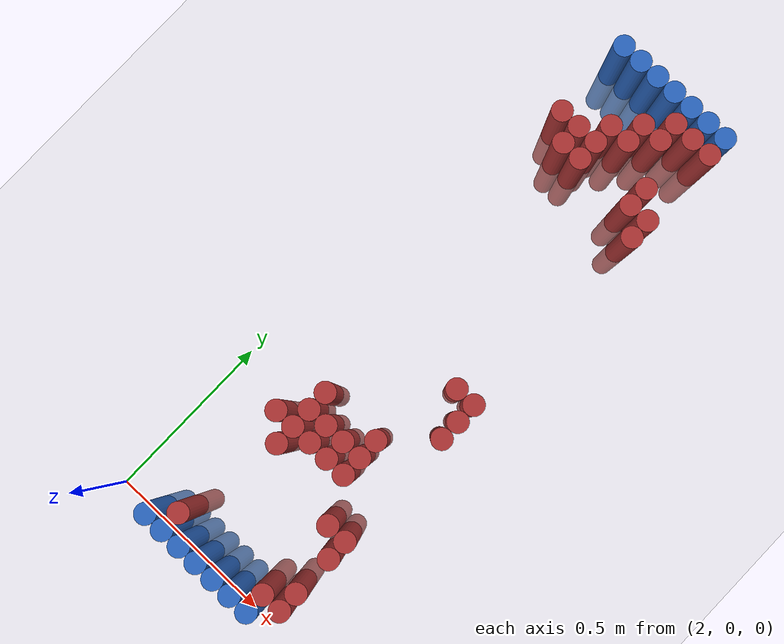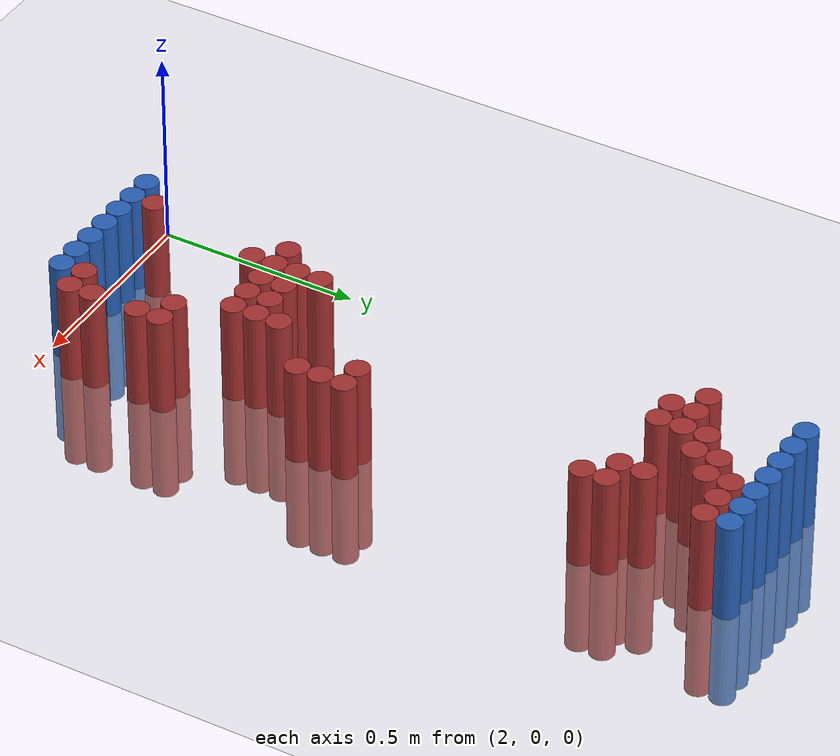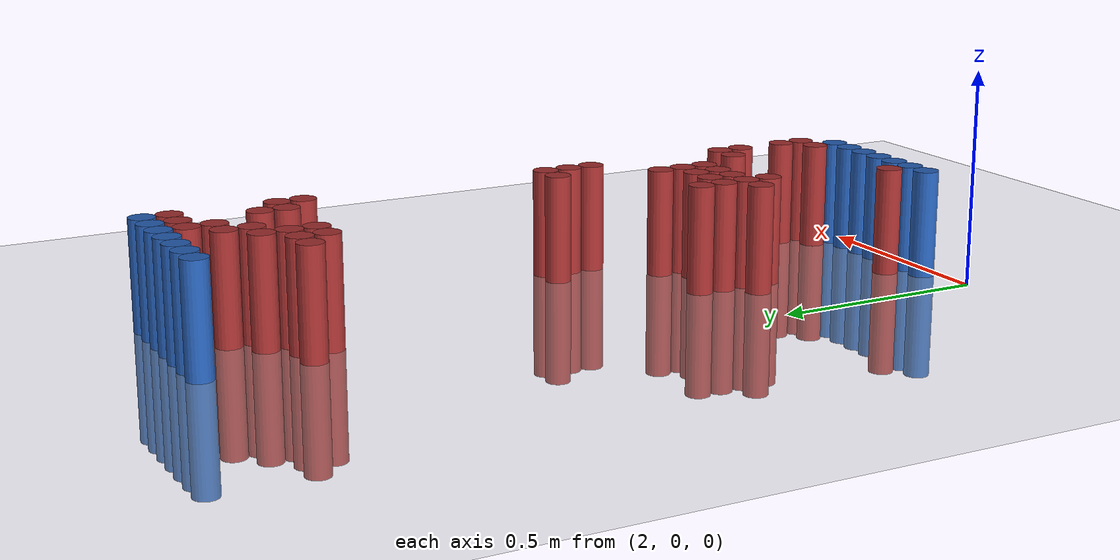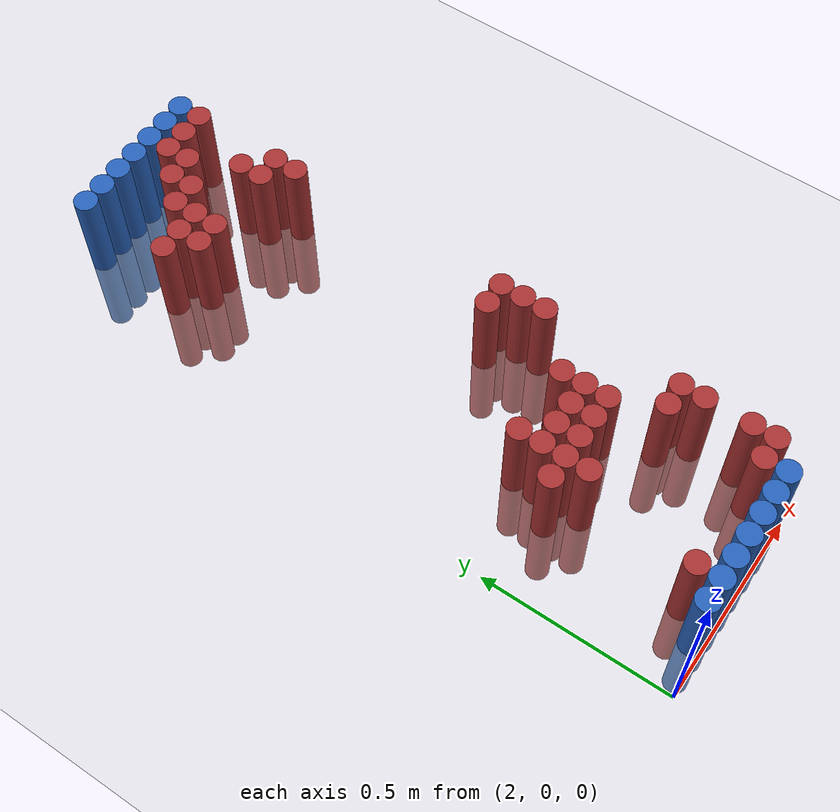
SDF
<sdf version="1.6">
 <world name="default">
  <model name="ground_plane">
   <static>1</static>
   <link name="link">
    <collision name="collision">
     <geometry><plane><normal>0 0 1</normal><size>100 100</size></plane></geometry>
     <surface><friction><ode><mu>100</mu><mu2>50</mu2></ode></friction></surface>
    </collision>
    <visual name="visual">
     <cast_shadows>0</cast_shadows>
     <geometry><plane><normal>0 0 1</normal><size>100 100</size></plane></geometry>
     <material>
      <script><uri>file://media/materials/scripts/gazebo.material</uri><name>Gazebo/Grey</name></script>
     </material>
    </visual>
   </link>
  </model>
  <model name="unit_cylinder_97">
   <static>1</static>
   <pose>2.190000 1.770000 0.000000 0.000000 0.000000 0.000000</pose>
   <link name="link">
    <inertial>
     <mass>1</mass>
     <inertia><ixx>0.145833</ixx><ixy>0</ixy><ixz>0</ixz><iyy>0.145833</iyy><iyz>0</iyz><izz>0.125</izz></inertia>
    </inertial>
    <collision name="collision">
     <geometry><cylinder><radius>0.030000</radius><length>0.5</length></cylinder></geometry>
    </collision>
    <visual name="visual">
     <geometry><cylinder><radius>0.030000</radius><length>0.5</length></cylinder></geometry>
     <material>
      <ambient>0.152000 0.379000 0.720000 1</ambient>
      <diffuse>0.152000 0.379000 0.720000 1</diffuse>
     </material>
     <material>
      <script><name>Gazebo/Grey</name><uri>file://media/materials/scripts/gazebo.material</uri></script>
     </material>
    </visual>
   </link>
  </model>
  <model name="unit_cylinder_98">
   <static>1</static>
   <pose>2.250000 1.770000 0.000000 0.000000 0.000000 0.000000</pose>
   <link name="link">
    <inertial>
     <mass>1</mass>
     <inertia><ixx>0.145833</ixx><ixy>0</ixy><ixz>0</ixz><iyy>0.145833</iyy><iyz>0</iyz><izz>0.125</izz></inertia>
    </inertial>
    <collision name="collision">
     <geometry><cylinder><radius>0.030000</radius><length>0.5</length></cylinder></geometry>
    </collision>
    <visual name="visual">
     <geometry><cylinder><radius>0.030000</radius><length>0.5</length></cylinder></geometry>
     <material>
      <ambient>0.152000 0.379000 0.720000 1</ambient>
      <diffuse>0.152000 0.379000 0.720000 1</diffuse>
     </material>
     <material>
      <script><name>Gazebo/Grey</name><uri>file://media/materials/scripts/gazebo.material</uri></script>
     </material>
    </visual>
   </link>
  </model>
  <model name="unit_cylinder_99">
   <static>1</static>
   <pose>2.310000 1.770000 0.000000 0.000000 0.000000 0.000000</pose>
   <link name="link">
    <inertial>
     <mass>1</mass>
     <inertia><ixx>0.145833</ixx><ixy>0</ixy><ixz>0</ixz><iyy>0.145833</iyy><iyz>0</iyz><izz>0.125</izz></inertia>
    </inertial>
    <collision name="collision">
     <geometry><cylinder><radius>0.030000</radius><length>0.5</length></cylinder></geometry>
    </collision>
    <visual name="visual">
     <geometry><cylinder><radius>0.030000</radius><length>0.5</length></cylinder></geometry>
     <material>
      <ambient>0.152000 0.379000 0.720000 1</ambient>
      <diffuse>0.152000 0.379000 0.720000 1</diffuse>
     </material>
     <material>
      <script><name>Gazebo/Grey</name><uri>file://media/materials/scripts/gazebo.material</uri></script>
     </material>
    </visual>
   </link>
  </model>
  <model name="unit_cylinder_100">
   <static>1</static>
   <pose>2.370000 1.770000 0.000000 0.000000 0.000000 0.000000</pose>
   <link name="link">
    <inertial>
     <mass>1</mass>
     <inertia><ixx>0.145833</ixx><ixy>0</ixy><ixz>0</ixz><iyy>0.145833</iyy><iyz>0</iyz><izz>0.125</izz></inertia>
    </inertial>
    <collision name="collision">
     <geometry><cylinder><radius>0.030000</radius><length>0.5</length></cylinder></geometry>
    </collision>
    <visual name="visual">
     <geometry><cylinder><radius>0.030000</radius><length>0.5</length></cylinder></geometry>
     <material>
      <ambient>0.152000 0.379000 0.720000 1</ambient>
      <diffuse>0.152000 0.379000 0.720000 1</diffuse>
     </material>
     <material>
      <script><name>Gazebo/Grey</name><uri>file://media/materials/scripts/gazebo.material</uri></script>
     </material>
    </visual>
   </link>
  </model>
  <model name="unit_cylinder_101">
   <static>1</static>
   <pose>2.430000 1.770000 0.000000 0.000000 0.000000 0.000000</pose>
   <link name="link">
    <inertial>
     <mass>1</mass>
     <inertia><ixx>0.145833</ixx><ixy>0</ixy><ixz>0</ixz><iyy>0.145833</iyy><iyz>0</iyz><izz>0.125</izz></inertia>
    </inertial>
    <collision name="collision">
     <geometry><cylinder><radius>0.030000</radius><length>0.5</length></cylinder></geometry>
    </collision>
    <visual name="visual">
     <geometry><cylinder><radius>0.030000</radius><length>0.5</length></cylinder></geometry>
     <material>
      <ambient>0.152000 0.379000 0.720000 1</ambient>
      <diffuse>0.152000 0.379000 0.720000 1</diffuse>
     </material>
     <material>
      <script><name>Gazebo/Grey</name><uri>file://media/materials/scripts/gazebo.material</uri></script>
     </material>
    </visual>
   </link>
  </model>
  <model name="unit_cylinder_102">
   <static>1</static>
   <pose>2.490000 1.770000 0.000000 0.000000 0.000000 0.000000</pose>
   <link name="link">
    <inertial>
     <mass>1</mass>
     <inertia><ixx>0.145833</ixx><ixy>0</ixy><ixz>0</ixz><iyy>0.145833</iyy><iyz>0</iyz><izz>0.125</izz></inertia>
    </inertial>
    <collision name="collision">
     <geometry><cylinder><radius>0.030000</radius><length>0.5</length></cylinder></geometry>
    </collision>
    <visual name="visual">
     <geometry><cylinder><radius>0.030000</radius><length>0.5</length></cylinder></geometry>
     <material>
      <ambient>0.152000 0.379000 0.720000 1</ambient>
      <diffuse>0.152000 0.379000 0.720000 1</diffuse>
     </material>
     <material>
      <script><name>Gazebo/Grey</name><uri>file://media/materials/scripts/gazebo.material</uri></script>
     </material>
    </visual>
   </link>
  </model>
  <model name="unit_cylinder_103">
   <static>1</static>
   <pose>2.550000 1.770000 0.000000 0.000000 0.000000 0.000000</pose>
   <link name="link">
    <inertial>
     <mass>1</mass>
     <inertia><ixx>0.145833</ixx><ixy>0</ixy><ixz>0</ixz><iyy>0.145833</iyy><iyz>0</iyz><izz>0.125</izz></inertia>
    </inertial>
    <collision name="collision">
     <geometry><cylinder><radius>0.030000</radius><length>0.5</length></cylinder></geometry>
    </collision>
    <visual name="visual">
     <geometry><cylinder><radius>0.030000</radius><length>0.5</length></cylinder></geometry>
     <material>
      <ambient>0.152000 0.379000 0.720000 1</ambient>
      <diffuse>0.152000 0.379000 0.720000 1</diffuse>
     </material>
     <material>
      <script><name>Gazebo/Grey</name><uri>file://media/materials/scripts/gazebo.material</uri></script>
     </material>
    </visual>
   </link>
  </model>
  <model name="unit_cylinder_126">
   <static>1</static>
   <pose>2.430000 1.710000 0.000000 0.000000 0.000000 0.000000</pose>
   <link name="link">
    <inertial>
     <mass>1</mass>
     <inertia><ixx>0.145833</ixx><ixy>0</ixy><ixz>0</ixz><iyy>0.145833</iyy><iyz>0</iyz><izz>0.125</izz></inertia>
    </inertial>
    <collision name="collision">
     <geometry><cylinder><radius>0.030000</radius><length>0.5</length></cylinder></geometry>
    </collision>
    <visual name="visual">
     <geometry><cylinder><radius>0.030000</radius><length>0.5</length></cylinder></geometry>
     <material>
      <ambient>0.648000 0.192000 0.192000 1</ambient>
      <diffuse>0.648000 0.192000 0.192000 1</diffuse>
     </material>
     <material>
      <script><name>Gazebo/Grey</name><uri>file://media/materials/scripts/gazebo.material</uri></script>
     </material>
    </visual>
   </link>
  </model>
  <model name="unit_cylinder_127">
   <static>1</static>
   <pose>2.490000 1.710000 0.000000 0.000000 0.000000 0.000000</pose>
   <link name="link">
    <inertial>
     <mass>1</mass>
     <inertia><ixx>0.145833</ixx><ixy>0</ixy><ixz>0</ixz><iyy>0.145833</iyy><iyz>0</iyz><izz>0.125</izz></inertia>
    </inertial>
    <collision name="collision">
     <geometry><cylinder><radius>0.030000</radius><length>0.5</length></cylinder></geometry>
    </collision>
    <visual name="visual">
     <geometry><cylinder><radius>0.030000</radius><length>0.5</length></cylinder></geometry>
     <material>
      <ambient>0.648000 0.192000 0.192000 1</ambient>
      <diffuse>0.648000 0.192000 0.192000 1</diffuse>
     </material>
     <material>
      <script><name>Gazebo/Grey</name><uri>file://media/materials/scripts/gazebo.material</uri></script>
     </material>
    </visual>
   </link>
  </model>
  <model name="unit_cylinder_128">
   <static>1</static>
   <pose>2.550000 1.710000 0.000000 0.000000 0.000000 0.000000</pose>
   <link name="link">
    <inertial>
     <mass>1</mass>
     <inertia><ixx>0.145833</ixx><ixy>0</ixy><ixz>0</ixz><iyy>0.145833</iyy><iyz>0</iyz><izz>0.125</izz></inertia>
    </inertial>
    <collision name="collision">
     <geometry><cylinder><radius>0.030000</radius><length>0.5</length></cylinder></geometry>
    </collision>
    <visual name="visual">
     <geometry><cylinder><radius>0.030000</radius><length>0.5</length></cylinder></geometry>
     <material>
      <ambient>0.648000 0.192000 0.192000 1</ambient>
      <diffuse>0.648000 0.192000 0.192000 1</diffuse>
     </material>
     <material>
      <script><name>Gazebo/Grey</name><uri>file://media/materials/scripts/gazebo.material</uri></script>
     </material>
    </visual>
   </link>
  </model>
  <model name="unit_cylinder_142">
   <static>1</static>
   <pose>2.370000 1.650000 0.000000 0.000000 0.000000 0.000000</pose>
   <link name="link">
    <inertial>
     <mass>1</mass>
     <inertia><ixx>0.145833</ixx><ixy>0</ixy><ixz>0</ixz><iyy>0.145833</iyy><iyz>0</iyz><izz>0.125</izz></inertia>
    </inertial>
    <collision name="collision">
     <geometry><cylinder><radius>0.030000</radius><length>0.5</length></cylinder></geometry>
    </collision>
    <visual name="visual">
     <geometry><cylinder><radius>0.030000</radius><length>0.5</length></cylinder></geometry>
     <material>
      <ambient>0.648000 0.192000 0.192000 1</ambient>
      <diffuse>0.648000 0.192000 0.192000 1</diffuse>
     </material>
     <material>
      <script><name>Gazebo/Grey</name><uri>file://media/materials/scripts/gazebo.material</uri></script>
     </material>
    </visual>
   </link>
  </model>
  <model name="unit_cylinder_143">
   <static>1</static>
   <pose>2.430000 1.650000 0.000000 0.000000 0.000000 0.000000</pose>
   <link name="link">
    <inertial>
     <mass>1</mass>
     <inertia><ixx>0.145833</ixx><ixy>0</ixy><ixz>0</ixz><iyy>0.145833</iyy><iyz>0</iyz><izz>0.125</izz></inertia>
    </inertial>
    <collision name="collision">
     <geometry><cylinder><radius>0.030000</radius><length>0.5</length></cylinder></geometry>
    </collision>
    <visual name="visual">
     <geometry><cylinder><radius>0.030000</radius><length>0.5</length></cylinder></geometry>
     <material>
      <ambient>0.648000 0.192000 0.192000 1</ambient>
      <diffuse>0.648000 0.192000 0.192000 1</diffuse>
     </material>
     <material>
      <script><name>Gazebo/Grey</name><uri>file://media/materials/scripts/gazebo.material</uri></script>
     </material>
    </visual>
   </link>
  </model>
  <model name="unit_cylinder_151">
   <static>1</static>
   <pose>2.310000 1.590000 0.000000 0.000000 0.000000 0.000000</pose>
   <link name="link">
    <inertial>
     <mass>1</mass>
     <inertia><ixx>0.145833</ixx><ixy>0</ixy><ixz>0</ixz><iyy>0.145833</iyy><iyz>0</iyz><izz>0.125</izz></inertia>
    </inertial>
    <collision name="collision">
     <geometry><cylinder><radius>0.030000</radius><length>0.5</length></cylinder></geometry>
    </collision>
    <visual name="visual">
     <geometry><cylinder><radius>0.030000</radius><length>0.5</length></cylinder></geometry>
     <material>
      <ambient>0.648000 0.192000 0.192000 1</ambient>
      <diffuse>0.648000 0.192000 0.192000 1</diffuse>
     </material>
     <material>
      <script><name>Gazebo/Grey</name><uri>file://media/materials/scripts/gazebo.material</uri></script>
     </material>
    </visual>
   </link>
  </model>
  <model name="unit_cylinder_152">
   <static>1</static>
   <pose>2.370000 1.590000 0.000000 0.000000 0.000000 0.000000</pose>
   <link name="link">
    <inertial>
     <mass>1</mass>
     <inertia><ixx>0.145833</ixx><ixy>0</ixy><ixz>0</ixz><iyy>0.145833</iyy><iyz>0</iyz><izz>0.125</izz></inertia>
    </inertial>
    <collision name="collision">
     <geometry><cylinder><radius>0.030000</radius><length>0.5</length></cylinder></geometry>
    </collision>
    <visual name="visual">
     <geometry><cylinder><radius>0.030000</radius><length>0.5</length></cylinder></geometry>
     <material>
      <ambient>0.648000 0.192000 0.192000 1</ambient>
      <diffuse>0.648000 0.192000 0.192000 1</diffuse>
     </material>
     <material>
      <script><name>Gazebo/Grey</name><uri>file://media/materials/scripts/gazebo.material</uri></script>
     </material>
    </visual>
   </link>
  </model>
  <model name="unit_cylinder_157">
   <static>1</static>
   <pose>2.190000 1.530000 0.000000 0.000000 0.000000 0.000000</pose>
   <link name="link">
    <inertial>
     <mass>1</mass>
     <inertia><ixx>0.145833</ixx><ixy>0</ixy><ixz>0</ixz><iyy>0.145833</iyy><iyz>0</iyz><izz>0.125</izz></inertia>
    </inertial>
    <collision name="collision">
     <geometry><cylinder><radius>0.030000</radius><length>0.5</length></cylinder></geometry>
    </collision>
    <visual name="visual">
     <geometry><cylinder><radius>0.030000</radius><length>0.5</length></cylinder></geometry>
     <material>
      <ambient>0.648000 0.192000 0.192000 1</ambient>
      <diffuse>0.648000 0.192000 0.192000 1</diffuse>
     </material>
     <material>
      <script><name>Gazebo/Grey</name><uri>file://media/materials/scripts/gazebo.material</uri></script>
     </material>
    </visual>
   </link>
  </model>
  <model name="unit_cylinder_158">
   <static>1</static>
   <pose>2.250000 1.530000 0.000000 0.000000 0.000000 0.000000</pose>
   <link name="link">
    <inertial>
     <mass>1</mass>
     <inertia><ixx>0.145833</ixx><ixy>0</ixy><ixz>0</ixz><iyy>0.145833</iyy><iyz>0</iyz><izz>0.125</izz></inertia>
    </inertial>
    <collision name="collision">
     <geometry><cylinder><radius>0.030000</radius><length>0.5</length></cylinder></geometry>
    </collision>
    <visual name="visual">
     <geometry><cylinder><radius>0.030000</radius><length>0.5</length></cylinder></geometry>
     <material>
      <ambient>0.648000 0.192000 0.192000 1</ambient>
      <diffuse>0.648000 0.192000 0.192000 1</diffuse>
     </material>
     <material>
      <script><name>Gazebo/Grey</name><uri>file://media/materials/scripts/gazebo.material</uri></script>
     </material>
    </visual>
   </link>
  </model>
  <model name="unit_cylinder_159">
   <static>1</static>
   <pose>2.310000 1.530000 0.000000 0.000000 0.000000 0.000000</pose>
   <link name="link">
    <inertial>
     <mass>1</mass>
     <inertia><ixx>0.145833</ixx><ixy>0</ixy><ixz>0</ixz><iyy>0.145833</iyy><iyz>0</iyz><izz>0.125</izz></inertia>
    </inertial>
    <collision name="collision">
     <geometry><cylinder><radius>0.030000</radius><length>0.5</length></cylinder></geometry>
    </collision>
    <visual name="visual">
     <geometry><cylinder><radius>0.030000</radius><length>0.5</length></cylinder></geometry>
     <material>
      <ambient>0.648000 0.192000 0.192000 1</ambient>
      <diffuse>0.648000 0.192000 0.192000 1</diffuse>
     </material>
     <material>
      <script><name>Gazebo/Grey</name><uri>file://media/materials/scripts/gazebo.material</uri></script>
     </material>
    </visual>
   </link>
  </model>
  <model name="unit_cylinder_160">
   <static>1</static>
   <pose>2.490000 1.530000 0.000000 0.000000 0.000000 0.000000</pose>
   <link name="link">
    <inertial>
     <mass>1</mass>
     <inertia><ixx>0.145833</ixx><ixy>0</ixy><ixz>0</ixz><iyy>0.145833</iyy><iyz>0</iyz><izz>0.125</izz></inertia>
    </inertial>
    <collision name="collision">
     <geometry><cylinder><radius>0.030000</radius><length>0.5</length></cylinder></geometry>
    </collision>
    <visual name="visual">
     <geometry><cylinder><radius>0.030000</radius><length>0.5</length></cylinder></geometry>
     <material>
      <ambient>0.648000 0.192000 0.192000 1</ambient>
      <diffuse>0.648000 0.192000 0.192000 1</diffuse>
     </material>
     <material>
      <script><name>Gazebo/Grey</name><uri>file://media/materials/scripts/gazebo.material</uri></script>
     </material>
    </visual>
   </link>
  </model>
  <model name="unit_cylinder_162">
   <static>1</static>
   <pose>2.250000 1.470000 0.000000 0.000000 0.000000 0.000000</pose>
   <link name="link">
    <inertial>
     <mass>1</mass>
     <inertia><ixx>0.145833</ixx><ixy>0</ixy><ixz>0</ixz><iyy>0.145833</iyy><iyz>0</iyz><izz>0.125</izz></inertia>
    </inertial>
    <collision name="collision">
     <geometry><cylinder><radius>0.030000</radius><length>0.5</length></cylinder></geometry>
    </collision>
    <visual name="visual">
     <geometry><cylinder><radius>0.030000</radius><length>0.5</length></cylinder></geometry>
     <material>
      <ambient>0.648000 0.192000 0.192000 1</ambient>
      <diffuse>0.648000 0.192000 0.192000 1</diffuse>
     </material>
     <material>
      <script><name>Gazebo/Grey</name><uri>file://media/materials/scripts/gazebo.material</uri></script>
     </material>
    </visual>
   </link>
  </model>
  <model name="unit_cylinder_163">
   <static>1</static>
   <pose>2.310000 1.470000 0.000000 0.000000 0.000000 0.000000</pose>
   <link name="link">
    <inertial>
     <mass>1</mass>
     <inertia><ixx>0.145833</ixx><ixy>0</ixy><ixz>0</ixz><iyy>0.145833</iyy><iyz>0</iyz><izz>0.125</izz></inertia>
    </inertial>
    <collision name="collision">
     <geometry><cylinder><radius>0.030000</radius><length>0.5</length></cylinder></geometry>
    </collision>
    <visual name="visual">
     <geometry><cylinder><radius>0.030000</radius><length>0.5</length></cylinder></geometry>
     <material>
      <ambient>0.648000 0.192000 0.192000 1</ambient>
      <diffuse>0.648000 0.192000 0.192000 1</diffuse>
     </material>
     <material>
      <script><name>Gazebo/Grey</name><uri>file://media/materials/scripts/gazebo.material</uri></script>
     </material>
    </visual>
   </link>
  </model>
  <model name="unit_cylinder_164">
   <static>1</static>
   <pose>2.490000 1.470000 0.000000 0.000000 0.000000 0.000000</pose>
   <link name="link">
    <inertial>
     <mass>1</mass>
     <inertia><ixx>0.145833</ixx><ixy>0</ixy><ixz>0</ixz><iyy>0.145833</iyy><iyz>0</iyz><izz>0.125</izz></inertia>
    </inertial>
    <collision name="collision">
     <geometry><cylinder><radius>0.030000</radius><length>0.5</length></cylinder></geometry>
    </collision>
    <visual name="visual">
     <geometry><cylinder><radius>0.030000</radius><length>0.5</length></cylinder></geometry>
     <material>
      <ambient>0.648000 0.192000 0.192000 1</ambient>
      <diffuse>0.648000 0.192000 0.192000 1</diffuse>
     </material>
     <material>
      <script><name>Gazebo/Grey</name><uri>file://media/materials/scripts/gazebo.material</uri></script>
     </material>
    </visual>
   </link>
  </model>
  <model name="unit_cylinder_165">
   <static>1</static>
   <pose>2.550000 1.470000 0.000000 0.000000 0.000000 0.000000</pose>
   <link name="link">
    <inertial>
     <mass>1</mass>
     <inertia><ixx>0.145833</ixx><ixy>0</ixy><ixz>0</ixz><iyy>0.145833</iyy><iyz>0</iyz><izz>0.125</izz></inertia>
    </inertial>
    <collision name="collision">
     <geometry><cylinder><radius>0.030000</radius><length>0.5</length></cylinder></geometry>
    </collision>
    <visual name="visual">
     <geometry><cylinder><radius>0.030000</radius><length>0.5</length></cylinder></geometry>
     <material>
      <ambient>0.648000 0.192000 0.192000 1</ambient>
      <diffuse>0.648000 0.192000 0.192000 1</diffuse>
     </material>
     <material>
      <script><name>Gazebo/Grey</name><uri>file://media/materials/scripts/gazebo.material</uri></script>
     </material>
    </visual>
   </link>
  </model>
  <model name="unit_cylinder_167">
   <static>1</static>
   <pose>2.550000 1.410000 0.000000 0.000000 0.000000 0.000000</pose>
   <link name="link">
    <inertial>
     <mass>1</mass>
     <inertia><ixx>0.145833</ixx><ixy>0</ixy><ixz>0</ixz><iyy>0.145833</iyy><iyz>0</iyz><izz>0.125</izz></inertia>
    </inertial>
    <collision name="collision">
     <geometry><cylinder><radius>0.030000</radius><length>0.5</length></cylinder></geometry>
    </collision>
    <visual name="visual">
     <geometry><cylinder><radius>0.030000</radius><length>0.5</length></cylinder></geometry>
     <material>
      <ambient>0.648000 0.192000 0.192000 1</ambient>
      <diffuse>0.648000 0.192000 0.192000 1</diffuse>
     </material>
     <material>
      <script><name>Gazebo/Grey</name><uri>file://media/materials/scripts/gazebo.material</uri></script>
     </material>
    </visual>
   </link>
  </model>
  <model name="unit_cylinder_202">
   <static>1</static>
   <pose>2.490000 0.810000 0.000000 0.000000 0.000000 0.000000</pose>
   <link name="link">
    <inertial>
     <mass>1</mass>
     <inertia><ixx>0.145833</ixx><ixy>0</ixy><ixz>0</ixz><iyy>0.145833</iyy><iyz>0</iyz><izz>0.125</izz></inertia>
    </inertial>
    <collision name="collision">
     <geometry><cylinder><radius>0.030000</radius><length>0.5</length></cylinder></geometry>
    </collision>
    <visual name="visual">
     <geometry><cylinder><radius>0.030000</radius><length>0.5</length></cylinder></geometry>
     <material>
      <ambient>0.648000 0.192000 0.192000 1</ambient>
      <diffuse>0.648000 0.192000 0.192000 1</diffuse>
     </material>
     <material>
      <script><name>Gazebo/Grey</name><uri>file://media/materials/scripts/gazebo.material</uri></script>
     </material>
    </visual>
   </link>
  </model>
  <model name="unit_cylinder_203">
   <static>1</static>
   <pose>2.550000 0.810000 0.000000 0.000000 0.000000 0.000000</pose>
   <link name="link">
    <inertial>
     <mass>1</mass>
     <inertia><ixx>0.145833</ixx><ixy>0</ixy><ixz>0</ixz><iyy>0.145833</iyy><iyz>0</iyz><izz>0.125</izz></inertia>
    </inertial>
    <collision name="collision">
     <geometry><cylinder><radius>0.030000</radius><length>0.5</length></cylinder></geometry>
    </collision>
    <visual name="visual">
     <geometry><cylinder><radius>0.030000</radius><length>0.5</length></cylinder></geometry>
     <material>
      <ambient>0.648000 0.192000 0.192000 1</ambient>
      <diffuse>0.648000 0.192000 0.192000 1</diffuse>
     </material>
     <material>
      <script><name>Gazebo/Grey</name><uri>file://media/materials/scripts/gazebo.material</uri></script>
     </material>
    </visual>
   </link>
  </model>
  <model name="unit_cylinder_210">
   <static>1</static>
   <pose>2.550000 0.750000 0.000000 0.000000 0.000000 0.000000</pose>
   <link name="link">
    <inertial>
     <mass>1</mass>
     <inertia><ixx>0.145833</ixx><ixy>0</ixy><ixz>0</ixz><iyy>0.145833</iyy><iyz>0</iyz><izz>0.125</izz></inertia>
    </inertial>
    <collision name="collision">
     <geometry><cylinder><radius>0.030000</radius><length>0.5</length></cylinder></geometry>
    </collision>
    <visual name="visual">
     <geometry><cylinder><radius>0.030000</radius><length>0.5</length></cylinder></geometry>
     <material>
      <ambient>0.648000 0.192000 0.192000 1</ambient>
      <diffuse>0.648000 0.192000 0.192000 1</diffuse>
     </material>
     <material>
      <script><name>Gazebo/Grey</name><uri>file://media/materials/scripts/gazebo.material</uri></script>
     </material>
    </visual>
   </link>
  </model>
  <model name="unit_cylinder_216">
   <static>1</static>
   <pose>2.550000 0.690000 0.000000 0.000000 0.000000 0.000000</pose>
   <link name="link">
    <inertial>
     <mass>1</mass>
     <inertia><ixx>0.145833</ixx><ixy>0</ixy><ixz>0</ixz><iyy>0.145833</iyy><iyz>0</iyz><izz>0.125</izz></inertia>
    </inertial>
    <collision name="collision">
     <geometry><cylinder><radius>0.030000</radius><length>0.5</length></cylinder></geometry>
    </collision>
    <visual name="visual">
     <geometry><cylinder><radius>0.030000</radius><length>0.5</length></cylinder></geometry>
     <material>
      <ambient>0.648000 0.192000 0.192000 1</ambient>
      <diffuse>0.648000 0.192000 0.192000 1</diffuse>
     </material>
     <material>
      <script><name>Gazebo/Grey</name><uri>file://media/materials/scripts/gazebo.material</uri></script>
     </material>
    </visual>
   </link>
  </model>
  <model name="unit_cylinder_223">
   <static>1</static>
   <pose>2.250000 0.570000 0.000000 0.000000 0.000000 0.000000</pose>
   <link name="link">
    <inertial>
     <mass>1</mass>
     <inertia><ixx>0.145833</ixx><ixy>0</ixy><ixz>0</ixz><iyy>0.145833</iyy><iyz>0</iyz><izz>0.125</izz></inertia>
    </inertial>
    <collision name="collision">
     <geometry><cylinder><radius>0.030000</radius><length>0.5</length></cylinder></geometry>
    </collision>
    <visual name="visual">
     <geometry><cylinder><radius>0.030000</radius><length>0.5</length></cylinder></geometry>
     <material>
      <ambient>0.648000 0.192000 0.192000 1</ambient>
      <diffuse>0.648000 0.192000 0.192000 1</diffuse>
     </material>
     <material>
      <script><name>Gazebo/Grey</name><uri>file://media/materials/scripts/gazebo.material</uri></script>
     </material>
    </visual>
   </link>
  </model>
  <model name="unit_cylinder_224">
   <static>1</static>
   <pose>2.430000 0.570000 0.000000 0.000000 0.000000 0.000000</pose>
   <link name="link">
    <inertial>
     <mass>1</mass>
     <inertia><ixx>0.145833</ixx><ixy>0</ixy><ixz>0</ixz><iyy>0.145833</iyy><iyz>0</iyz><izz>0.125</izz></inertia>
    </inertial>
    <collision name="collision">
     <geometry><cylinder><radius>0.030000</radius><length>0.5</length></cylinder></geometry>
    </collision>
    <visual name="visual">
     <geometry><cylinder><radius>0.030000</radius><length>0.5</length></cylinder></geometry>
     <material>
      <ambient>0.648000 0.192000 0.192000 1</ambient>
      <diffuse>0.648000 0.192000 0.192000 1</diffuse>
     </material>
     <material>
      <script><name>Gazebo/Grey</name><uri>file://media/materials/scripts/gazebo.material</uri></script>
     </material>
    </visual>
   </link>
  </model>
  <model name="unit_cylinder_226">
   <static>1</static>
   <pose>2.250000 0.510000 0.000000 0.000000 0.000000 0.000000</pose>
   <link name="link">
    <inertial>
     <mass>1</mass>
     <inertia><ixx>0.145833</ixx><ixy>0</ixy><ixz>0</ixz><iyy>0.145833</iyy><iyz>0</iyz><izz>0.125</izz></inertia>
    </inertial>
    <collision name="collision">
     <geometry><cylinder><radius>0.030000</radius><length>0.5</length></cylinder></geometry>
    </collision>
    <visual name="visual">
     <geometry><cylinder><radius>0.030000</radius><length>0.5</length></cylinder></geometry>
     <material>
      <ambient>0.648000 0.192000 0.192000 1</ambient>
      <diffuse>0.648000 0.192000 0.192000 1</diffuse>
     </material>
     <material>
      <script><name>Gazebo/Grey</name><uri>file://media/materials/scripts/gazebo.material</uri></script>
     </material>
    </visual>
   </link>
  </model>
  <model name="unit_cylinder_227">
   <static>1</static>
   <pose>2.310000 0.510000 0.000000 0.000000 0.000000 0.000000</pose>
   <link name="link">
    <inertial>
     <mass>1</mass>
     <inertia><ixx>0.145833</ixx><ixy>0</ixy><ixz>0</ixz><iyy>0.145833</iyy><iyz>0</iyz><izz>0.125</izz></inertia>
    </inertial>
    <collision name="collision">
     <geometry><cylinder><radius>0.030000</radius><length>0.5</length></cylinder></geometry>
    </collision>
    <visual name="visual">
     <geometry><cylinder><radius>0.030000</radius><length>0.5</length></cylinder></geometry>
     <material>
      <ambient>0.648000 0.192000 0.192000 1</ambient>
      <diffuse>0.648000 0.192000 0.192000 1</diffuse>
     </material>
     <material>
      <script><name>Gazebo/Grey</name><uri>file://media/materials/scripts/gazebo.material</uri></script>
     </material>
    </visual>
   </link>
  </model>
  <model name="unit_cylinder_228">
   <static>1</static>
   <pose>2.370000 0.510000 0.000000 0.000000 0.000000 0.000000</pose>
   <link name="link">
    <inertial>
     <mass>1</mass>
     <inertia><ixx>0.145833</ixx><ixy>0</ixy><ixz>0</ixz><iyy>0.145833</iyy><iyz>0</iyz><izz>0.125</izz></inertia>
    </inertial>
    <collision name="collision">
     <geometry><cylinder><radius>0.030000</radius><length>0.5</length></cylinder></geometry>
    </collision>
    <visual name="visual">
     <geometry><cylinder><radius>0.030000</radius><length>0.5</length></cylinder></geometry>
     <material>
      <ambient>0.648000 0.192000 0.192000 1</ambient>
      <diffuse>0.648000 0.192000 0.192000 1</diffuse>
     </material>
     <material>
      <script><name>Gazebo/Grey</name><uri>file://media/materials/scripts/gazebo.material</uri></script>
     </material>
    </visual>
   </link>
  </model>
  <model name="unit_cylinder_229">
   <static>1</static>
   <pose>2.430000 0.510000 0.000000 0.000000 0.000000 0.000000</pose>
   <link name="link">
    <inertial>
     <mass>1</mass>
     <inertia><ixx>0.145833</ixx><ixy>0</ixy><ixz>0</ixz><iyy>0.145833</iyy><iyz>0</iyz><izz>0.125</izz></inertia>
    </inertial>
    <collision name="collision">
     <geometry><cylinder><radius>0.030000</radius><length>0.5</length></cylinder></geometry>
    </collision>
    <visual name="visual">
     <geometry><cylinder><radius>0.030000</radius><length>0.5</length></cylinder></geometry>
     <material>
      <ambient>0.648000 0.192000 0.192000 1</ambient>
      <diffuse>0.648000 0.192000 0.192000 1</diffuse>
     </material>
     <material>
      <script><name>Gazebo/Grey</name><uri>file://media/materials/scripts/gazebo.material</uri></script>
     </material>
    </visual>
   </link>
  </model>
  <model name="unit_cylinder_231">
   <static>1</static>
   <pose>2.190000 0.450000 0.000000 0.000000 0.000000 0.000000</pose>
   <link name="link">
    <inertial>
     <mass>1</mass>
     <inertia><ixx>0.145833</ixx><ixy>0</ixy><ixz>0</ixz><iyy>0.145833</iyy><iyz>0</iyz><izz>0.125</izz></inertia>
    </inertial>
    <collision name="collision">
     <geometry><cylinder><radius>0.030000</radius><length>0.5</length></cylinder></geometry>
    </collision>
    <visual name="visual">
     <geometry><cylinder><radius>0.030000</radius><length>0.5</length></cylinder></geometry>
     <material>
      <ambient>0.648000 0.192000 0.192000 1</ambient>
      <diffuse>0.648000 0.192000 0.192000 1</diffuse>
     </material>
     <material>
      <script><name>Gazebo/Grey</name><uri>file://media/materials/scripts/gazebo.material</uri></script>
     </material>
    </visual>
   </link>
  </model>
  <model name="unit_cylinder_232">
   <static>1</static>
   <pose>2.250000 0.450000 0.000000 0.000000 0.000000 0.000000</pose>
   <link name="link">
    <inertial>
     <mass>1</mass>
     <inertia><ixx>0.145833</ixx><ixy>0</ixy><ixz>0</ixz><iyy>0.145833</iyy><iyz>0</iyz><izz>0.125</izz></inertia>
    </inertial>
    <collision name="collision">
     <geometry><cylinder><radius>0.030000</radius><length>0.5</length></cylinder></geometry>
    </collision>
    <visual name="visual">
     <geometry><cylinder><radius>0.030000</radius><length>0.5</length></cylinder></geometry>
     <material>
      <ambient>0.648000 0.192000 0.192000 1</ambient>
      <diffuse>0.648000 0.192000 0.192000 1</diffuse>
     </material>
     <material>
      <script><name>Gazebo/Grey</name><uri>file://media/materials/scripts/gazebo.material</uri></script>
     </material>
    </visual>
   </link>
  </model>
  <model name="unit_cylinder_233">
   <static>1</static>
   <pose>2.310000 0.450000 0.000000 0.000000 0.000000 0.000000</pose>
   <link name="link">
    <inertial>
     <mass>1</mass>
     <inertia><ixx>0.145833</ixx><ixy>0</ixy><ixz>0</ixz><iyy>0.145833</iyy><iyz>0</iyz><izz>0.125</izz></inertia>
    </inertial>
    <collision name="collision">
     <geometry><cylinder><radius>0.030000</radius><length>0.5</length></cylinder></geometry>
    </collision>
    <visual name="visual">
     <geometry><cylinder><radius>0.030000</radius><length>0.5</length></cylinder></geometry>
     <material>
      <ambient>0.648000 0.192000 0.192000 1</ambient>
      <diffuse>0.648000 0.192000 0.192000 1</diffuse>
     </material>
     <material>
      <script><name>Gazebo/Grey</name><uri>file://media/materials/scripts/gazebo.material</uri></script>
     </material>
    </visual>
   </link>
  </model>
  <model name="unit_cylinder_234">
   <static>1</static>
   <pose>2.370000 0.450000 0.000000 0.000000 0.000000 0.000000</pose>
   <link name="link">
    <inertial>
     <mass>1</mass>
     <inertia><ixx>0.145833</ixx><ixy>0</ixy><ixz>0</ixz><iyy>0.145833</iyy><iyz>0</iyz><izz>0.125</izz></inertia>
    </inertial>
    <collision name="collision">
     <geometry><cylinder><radius>0.030000</radius><length>0.5</length></cylinder></geometry>
    </collision>
    <visual name="visual">
     <geometry><cylinder><radius>0.030000</radius><length>0.5</length></cylinder></geometry>
     <material>
      <ambient>0.648000 0.192000 0.192000 1</ambient>
      <diffuse>0.648000 0.192000 0.192000 1</diffuse>
     </material>
     <material>
      <script><name>Gazebo/Grey</name><uri>file://media/materials/scripts/gazebo.material</uri></script>
     </material>
    </visual>
   </link>
  </model>
  <model name="unit_cylinder_235">
   <static>1</static>
   <pose>2.430000 0.450000 0.000000 0.000000 0.000000 0.000000</pose>
   <link name="link">
    <inertial>
     <mass>1</mass>
     <inertia><ixx>0.145833</ixx><ixy>0</ixy><ixz>0</ixz><iyy>0.145833</iyy><iyz>0</iyz><izz>0.125</izz></inertia>
    </inertial>
    <collision name="collision">
     <geometry><cylinder><radius>0.030000</radius><length>0.5</length></cylinder></geometry>
    </collision>
    <visual name="visual">
     <geometry><cylinder><radius>0.030000</radius><length>0.5</length></cylinder></geometry>
     <material>
      <ambient>0.648000 0.192000 0.192000 1</ambient>
      <diffuse>0.648000 0.192000 0.192000 1</diffuse>
     </material>
     <material>
      <script><name>Gazebo/Grey</name><uri>file://media/materials/scripts/gazebo.material</uri></script>
     </material>
    </visual>
   </link>
  </model>
  <model name="unit_cylinder_238">
   <static>1</static>
   <pose>2.250000 0.390000 0.000000 0.000000 0.000000 0.000000</pose>
   <link name="link">
    <inertial>
     <mass>1</mass>
     <inertia><ixx>0.145833</ixx><ixy>0</ixy><ixz>0</ixz><iyy>0.145833</iyy><iyz>0</iyz><izz>0.125</izz></inertia>
    </inertial>
    <collision name="collision">
     <geometry><cylinder><radius>0.030000</radius><length>0.5</length></cylinder></geometry>
    </collision>
    <visual name="visual">
     <geometry><cylinder><radius>0.030000</radius><length>0.5</length></cylinder></geometry>
     <material>
      <ambient>0.648000 0.192000 0.192000 1</ambient>
      <diffuse>0.648000 0.192000 0.192000 1</diffuse>
     </material>
     <material>
      <script><name>Gazebo/Grey</name><uri>file://media/materials/scripts/gazebo.material</uri></script>
     </material>
    </visual>
   </link>
  </model>
  <model name="unit_cylinder_245">
   <static>1</static>
   <pose>2.490000 0.330000 0.000000 0.000000 0.000000 0.000000</pose>
   <link name="link">
    <inertial>
     <mass>1</mass>
     <inertia><ixx>0.145833</ixx><ixy>0</ixy><ixz>0</ixz><iyy>0.145833</iyy><iyz>0</iyz><izz>0.125</izz></inertia>
    </inertial>
    <collision name="collision">
     <geometry><cylinder><radius>0.030000</radius><length>0.5</length></cylinder></geometry>
    </collision>
    <visual name="visual">
     <geometry><cylinder><radius>0.030000</radius><length>0.5</length></cylinder></geometry>
     <material>
      <ambient>0.648000 0.192000 0.192000 1</ambient>
      <diffuse>0.648000 0.192000 0.192000 1</diffuse>
     </material>
     <material>
      <script><name>Gazebo/Grey</name><uri>file://media/materials/scripts/gazebo.material</uri></script>
     </material>
    </visual>
   </link>
  </model>
  <model name="unit_cylinder_246">
   <static>1</static>
   <pose>2.550000 0.330000 0.000000 0.000000 0.000000 0.000000</pose>
   <link name="link">
    <inertial>
     <mass>1</mass>
     <inertia><ixx>0.145833</ixx><ixy>0</ixy><ixz>0</ixz><iyy>0.145833</iyy><iyz>0</iyz><izz>0.125</izz></inertia>
    </inertial>
    <collision name="collision">
     <geometry><cylinder><radius>0.030000</radius><length>0.5</length></cylinder></geometry>
    </collision>
    <visual name="visual">
     <geometry><cylinder><radius>0.030000</radius><length>0.5</length></cylinder></geometry>
     <material>
      <ambient>0.648000 0.192000 0.192000 1</ambient>
      <diffuse>0.648000 0.192000 0.192000 1</diffuse>
     </material>
     <material>
      <script><name>Gazebo/Grey</name><uri>file://media/materials/scripts/gazebo.material</uri></script>
     </material>
    </visual>
   </link>
  </model>
  <model name="unit_cylinder_252">
   <static>1</static>
   <pose>2.550000 0.270000 0.000000 0.000000 0.000000 0.000000</pose>
   <link name="link">
    <inertial>
     <mass>1</mass>
     <inertia><ixx>0.145833</ixx><ixy>0</ixy><ixz>0</ixz><iyy>0.145833</iyy><iyz>0</iyz><izz>0.125</izz></inertia>
    </inertial>
    <collision name="collision">
     <geometry><cylinder><radius>0.030000</radius><length>0.5</length></cylinder></geometry>
    </collision>
    <visual name="visual">
     <geometry><cylinder><radius>0.030000</radius><length>0.5</length></cylinder></geometry>
     <material>
      <ambient>0.648000 0.192000 0.192000 1</ambient>
      <diffuse>0.648000 0.192000 0.192000 1</diffuse>
     </material>
     <material>
      <script><name>Gazebo/Grey</name><uri>file://media/materials/scripts/gazebo.material</uri></script>
     </material>
    </visual>
   </link>
  </model>
  <model name="unit_cylinder_264">
   <static>1</static>
   <pose>2.550000 0.150000 0.000000 0.000000 0.000000 0.000000</pose>
   <link name="link">
    <inertial>
     <mass>1</mass>
     <inertia><ixx>0.145833</ixx><ixy>0</ixy><ixz>0</ixz><iyy>0.145833</iyy><iyz>0</iyz><izz>0.125</izz></inertia>
    </inertial>
    <collision name="collision">
     <geometry><cylinder><radius>0.030000</radius><length>0.5</length></cylinder></geometry>
    </collision>
    <visual name="visual">
     <geometry><cylinder><radius>0.030000</radius><length>0.5</length></cylinder></geometry>
     <material>
      <ambient>0.648000 0.192000 0.192000 1</ambient>
      <diffuse>0.648000 0.192000 0.192000 1</diffuse>
     </material>
     <material>
      <script><name>Gazebo/Grey</name><uri>file://media/materials/scripts/gazebo.material</uri></script>
     </material>
    </visual>
   </link>
  </model>
  <model name="unit_cylinder_274">
   <static>1</static>
   <pose>2.190000 0.090000 0.000000 0.000000 0.000000 0.000000</pose>
   <link name="link">
    <inertial>
     <mass>1</mass>
     <inertia><ixx>0.145833</ixx><ixy>0</ixy><ixz>0</ixz><iyy>0.145833</iyy><iyz>0</iyz><izz>0.125</izz></inertia>
    </inertial>
    <collision name="collision">
     <geometry><cylinder><radius>0.030000</radius><length>0.5</length></cylinder></geometry>
    </collision>
    <visual name="visual">
     <geometry><cylinder><radius>0.030000</radius><length>0.5</length></cylinder></geometry>
     <material>
      <ambient>0.648000 0.192000 0.192000 1</ambient>
      <diffuse>0.648000 0.192000 0.192000 1</diffuse>
     </material>
     <material>
      <script><name>Gazebo/Grey</name><uri>file://media/materials/scripts/gazebo.material</uri></script>
     </material>
    </visual>
   </link>
  </model>
  <model name="unit_cylinder_275">
   <static>1</static>
   <pose>2.490000 0.090000 0.000000 0.000000 0.000000 0.000000</pose>
   <link name="link">
    <inertial>
     <mass>1</mass>
     <inertia><ixx>0.145833</ixx><ixy>0</ixy><ixz>0</ixz><iyy>0.145833</iyy><iyz>0</iyz><izz>0.125</izz></inertia>
    </inertial>
    <collision name="collision">
     <geometry><cylinder><radius>0.030000</radius><length>0.5</length></cylinder></geometry>
    </collision>
    <visual name="visual">
     <geometry><cylinder><radius>0.030000</radius><length>0.5</length></cylinder></geometry>
     <material>
      <ambient>0.648000 0.192000 0.192000 1</ambient>
      <diffuse>0.648000 0.192000 0.192000 1</diffuse>
     </material>
     <material>
      <script><name>Gazebo/Grey</name><uri>file://media/materials/scripts/gazebo.material</uri></script>
     </material>
    </visual>
   </link>
  </model>
  <model name="unit_cylinder_276">
   <static>1</static>
   <pose>2.550000 0.090000 0.000000 0.000000 0.000000 0.000000</pose>
   <link name="link">
    <inertial>
     <mass>1</mass>
     <inertia><ixx>0.145833</ixx><ixy>0</ixy><ixz>0</ixz><iyy>0.145833</iyy><iyz>0</iyz><izz>0.125</izz></inertia>
    </inertial>
    <collision name="collision">
     <geometry><cylinder><radius>0.030000</radius><length>0.5</length></cylinder></geometry>
    </collision>
    <visual name="visual">
     <geometry><cylinder><radius>0.030000</radius><length>0.5</length></cylinder></geometry>
     <material>
      <ambient>0.648000 0.192000 0.192000 1</ambient>
      <diffuse>0.648000 0.192000 0.192000 1</diffuse>
     </material>
     <material>
      <script><name>Gazebo/Grey</name><uri>file://media/materials/scripts/gazebo.material</uri></script>
     </material>
    </visual>
   </link>
  </model>
  <model name="unit_cylinder_285">
   <static>1</static>
   <pose>2.130000 0.030000 0.000000 0.000000 0.000000 0.000000</pose>
   <link name="link">
    <inertial>
     <mass>1</mass>
     <inertia><ixx>0.145833</ixx><ixy>0</ixy><ixz>0</ixz><iyy>0.145833</iyy><iyz>0</iyz><izz>0.125</izz></inertia>
    </inertial>
    <collision name="collision">
     <geometry><cylinder><radius>0.030000</radius><length>0.5</length></cylinder></geometry>
    </collision>
    <visual name="visual">
     <geometry><cylinder><radius>0.030000</radius><length>0.5</length></cylinder></geometry>
     <material>
      <ambient>0.152000 0.379000 0.720000 1</ambient>
      <diffuse>0.152000 0.379000 0.720000 1</diffuse>
     </material>
     <material>
      <script><name>Gazebo/Grey</name><uri>file://media/materials/scripts/gazebo.material</uri></script>
     </material>
    </visual>
   </link>
  </model>
  <model name="unit_cylinder_286">
   <static>1</static>
   <pose>2.190000 0.030000 0.000000 0.000000 0.000000 0.000000</pose>
   <link name="link">
    <inertial>
     <mass>1</mass>
     <inertia><ixx>0.145833</ixx><ixy>0</ixy><ixz>0</ixz><iyy>0.145833</iyy><iyz>0</iyz><izz>0.125</izz></inertia>
    </inertial>
    <collision name="collision">
     <geometry><cylinder><radius>0.030000</radius><length>0.5</length></cylinder></geometry>
    </collision>
    <visual name="visual">
     <geometry><cylinder><radius>0.030000</radius><length>0.5</length></cylinder></geometry>
     <material>
      <ambient>0.152000 0.379000 0.720000 1</ambient>
      <diffuse>0.152000 0.379000 0.720000 1</diffuse>
     </material>
     <material>
      <script><name>Gazebo/Grey</name><uri>file://media/materials/scripts/gazebo.material</uri></script>
     </material>
    </visual>
   </link>
  </model>
  <model name="unit_cylinder_287">
   <static>1</static>
   <pose>2.250000 0.030000 0.000000 0.000000 0.000000 0.000000</pose>
   <link name="link">
    <inertial>
     <mass>1</mass>
     <inertia><ixx>0.145833</ixx><ixy>0</ixy><ixz>0</ixz><iyy>0.145833</iyy><iyz>0</iyz><izz>0.125</izz></inertia>
    </inertial>
    <collision name="collision">
     <geometry><cylinder><radius>0.030000</radius><length>0.5</length></cylinder></geometry>
    </collision>
    <visual name="visual">
     <geometry><cylinder><radius>0.030000</radius><length>0.5</length></cylinder></geometry>
     <material>
      <ambient>0.152000 0.379000 0.720000 1</ambient>
      <diffuse>0.152000 0.379000 0.720000 1</diffuse>
     </material>
     <material>
      <script><name>Gazebo/Grey</name><uri>file://media/materials/scripts/gazebo.material</uri></script>
     </material>
    </visual>
   </link>
  </model>
  <model name="unit_cylinder_288">
   <static>1</static>
   <pose>2.310000 0.030000 0.000000 0.000000 0.000000 0.000000</pose>
   <link name="link">
    <inertial>
     <mass>1</mass>
     <inertia><ixx>0.145833</ixx><ixy>0</ixy><ixz>0</ixz><iyy>0.145833</iyy><iyz>0</iyz><izz>0.125</izz></inertia>
    </inertial>
    <collision name="collision">
     <geometry><cylinder><radius>0.030000</radius><length>0.5</length></cylinder></geometry>
    </collision>
    <visual name="visual">
     <geometry><cylinder><radius>0.030000</radius><length>0.5</length></cylinder></geometry>
     <material>
      <ambient>0.152000 0.379000 0.720000 1</ambient>
      <diffuse>0.152000 0.379000 0.720000 1</diffuse>
     </material>
     <material>
      <script><name>Gazebo/Grey</name><uri>file://media/materials/scripts/gazebo.material</uri></script>
     </material>
    </visual>
   </link>
  </model>
  <model name="unit_cylinder_289">
   <static>1</static>
   <pose>2.370000 0.030000 0.000000 0.000000 0.000000 0.000000</pose>
   <link name="link">
    <inertial>
     <mass>1</mass>
     <inertia><ixx>0.145833</ixx><ixy>0</ixy><ixz>0</ixz><iyy>0.145833</iyy><iyz>0</iyz><izz>0.125</izz></inertia>
    </inertial>
    <collision name="collision">
     <geometry><cylinder><radius>0.030000</radius><length>0.5</length></cylinder></geometry>
    </collision>
    <visual name="visual">
     <geometry><cylinder><radius>0.030000</radius><length>0.5</length></cylinder></geometry>
     <material>
      <ambient>0.152000 0.379000 0.720000 1</ambient>
      <diffuse>0.152000 0.379000 0.720000 1</diffuse>
     </material>
     <material>
      <script><name>Gazebo/Grey</name><uri>file://media/materials/scripts/gazebo.material</uri></script>
     </material>
    </visual>
   </link>
  </model>
  <model name="unit_cylinder_290">
   <static>1</static>
   <pose>2.430000 0.030000 0.000000 0.000000 0.000000 0.000000</pose>
   <link name="link">
    <inertial>
     <mass>1</mass>
     <inertia><ixx>0.145833</ixx><ixy>0</ixy><ixz>0</ixz><iyy>0.145833</iyy><iyz>0</iyz><izz>0.125</izz></inertia>
    </inertial>
    <collision name="collision">
     <geometry><cylinder><radius>0.030000</radius><length>0.5</length></cylinder></geometry>
    </collision>
    <visual name="visual">
     <geometry><cylinder><radius>0.030000</radius><length>0.5</length></cylinder></geometry>
     <material>
      <ambient>0.152000 0.379000 0.720000 1</ambient>
      <diffuse>0.152000 0.379000 0.720000 1</diffuse>
     </material>
     <material>
      <script><name>Gazebo/Grey</name><uri>file://media/materials/scripts/gazebo.material</uri></script>
     </material>
    </visual>
   </link>
  </model>
  <model name="unit_cylinder_291">
   <static>1</static>
   <pose>2.490000 0.030000 0.000000 0.000000 0.000000 0.000000</pose>
   <link name="link">
    <inertial>
     <mass>1</mass>
     <inertia><ixx>0.145833</ixx><ixy>0</ixy><ixz>0</ixz><iyy>0.145833</iyy><iyz>0</iyz><izz>0.125</izz></inertia>
    </inertial>
    <collision name="collision">
     <geometry><cylinder><radius>0.030000</radius><length>0.5</length></cylinder></geometry>
    </collision>
    <visual name="visual">
     <geometry><cylinder><radius>0.030000</radius><length>0.5</length></cylinder></geometry>
     <material>
      <ambient>0.152000 0.379000 0.720000 1</ambient>
      <diffuse>0.152000 0.379000 0.720000 1</diffuse>
     </material>
     <material>
      <script><name>Gazebo/Grey</name><uri>file://media/materials/scripts/gazebo.material</uri></script>
     </material>
    </visual>
   </link>
  </model>
 </world>
</sdf>
